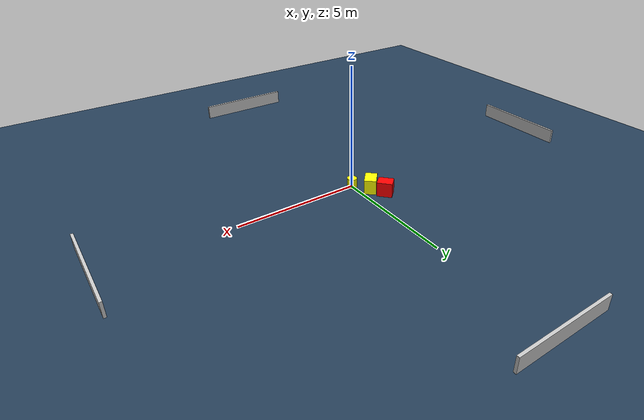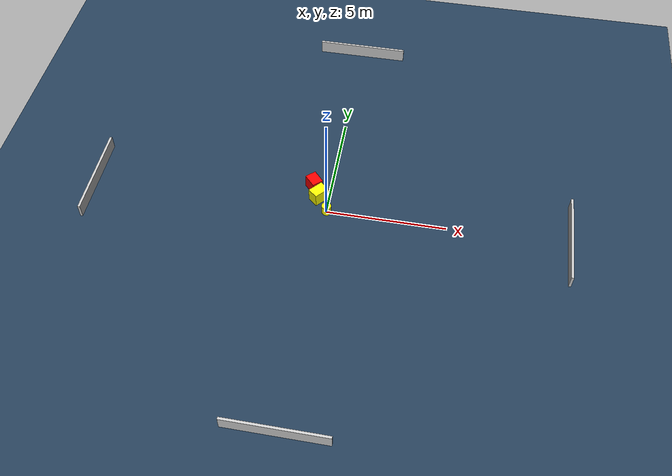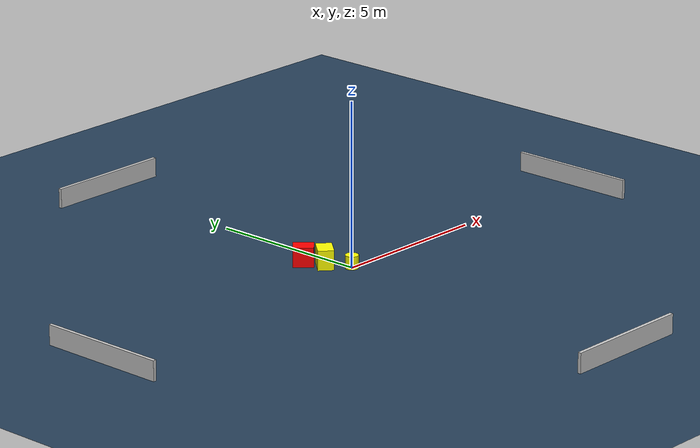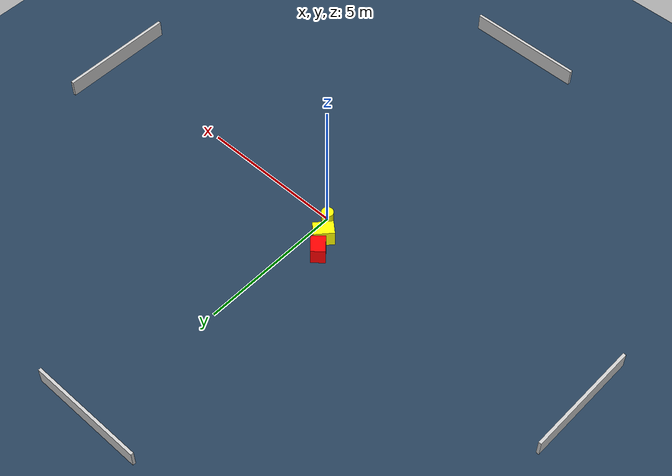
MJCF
<?xml version="1.0" ?>
<mujoco model="generated_environment">
  <option timestep="0.01" integrator="RK4" cone="elliptic"/>
  <default>
    <geom density="1"/>
  </default>
  <asset>
    <texture builtin="gradient" height="3072" name="skybox" rgb1="0.3 0.5 0.7" rgb2="0 0 0" type="skybox" width="512"/>
    <texture builtin="checker" height="300" name="groundplane" rgb1="0.2 0.3 0.4" rgb2="0.1 0.2 0.3" type="2d" width="300"/>
    <material name="groundplane" reflectance="0.2" texrepeat="5 5" texture="groundplane"/>
  </asset>
  <worldbody>
    <light dir="0 0 -1" directional="true" pos="0 0 1.5"/>
    <geom condim="3" friction="0.5 0.005 0.001" material="groundplane" name="floor" pos="0 0 0" size="0 0 0.05" type="plane"/>
    <body name="walls">
      <geom name="wall_1" condim="4" pos="-10.0 0.0 0.3" rgba="0.800000011920929 0.800000011920929 0.800000011920929 1.0" size="0.05 2.0 0.3" type="box"/>
      <geom name="wall_2" condim="4" pos="10.0 0.0 0.3" rgba="0.800000011920929 0.800000011920929 0.800000011920929 1.0" size="0.05 2.0 0.3" type="box"/>
      <geom name="wall_3" condim="4" pos="0.0 -10.0 0.3" rgba="0.800000011920929 0.800000011920929 0.800000011920929 1.0" size="2.0 0.05 0.3" type="box"/>
      <geom name="wall_4" condim="4" pos="0.0 10.0 0.3" rgba="0.800000011920929 0.800000011920929 0.800000011920929 1.0" size="2.0 0.05 0.3" type="box"/>
    </body>
    <body name="robot">
      <joint name="joint_x" type="slide" pos="0 0 0" axis="1 0 0"/>
      <joint name="joint_y" type="slide" pos="0 0 0" axis="0 1 0"/>
      <geom name="robot" type="cylinder" pos="0.0 0.0 0.2" size="0.2 0.2 0.0" mass="5.0" friction="1.0 0.005 0.0001" condim="4" rgba="1.0 1.0 0.0 1.0"/>
    </body>
    <body name="obstacle_1_movable">
      <geom name="obstacle_1_movable" condim="4" pos="-0.445469534402622 0.6520796143244104 0.3" euler="0 0 318.7215939214872" friction="0.0 0.005 0.001" rgba="1.0 1.0 0.0 1.0" size="0.23885853062915385 0.33879867009928444 0.3" type="box" mass="0.1"/>
      <joint type="free"/>
    </body>
    <body name="obstacle_2_static">
      <geom name="obstacle_2_static" condim="4" pos="-0.7436568528913876 1.2145191798200992 0.3" euler="0 0 42.28224270420611" friction="0.0 0.005 0.001" rgba="1.0 0.0 0.0 1.0" size="0.24141194341443212 0.3057122715610371 0.3" type="box"/>
    </body>
  </worldbody>
  <actuator>
    <motor name="actuator_x" joint="joint_x" gear="1" ctrlrange="-1 1"/>
    <motor name="actuator_y" joint="joint_y" gear="1" ctrlrange="-1 1"/>
  </actuator>
</mujoco>
